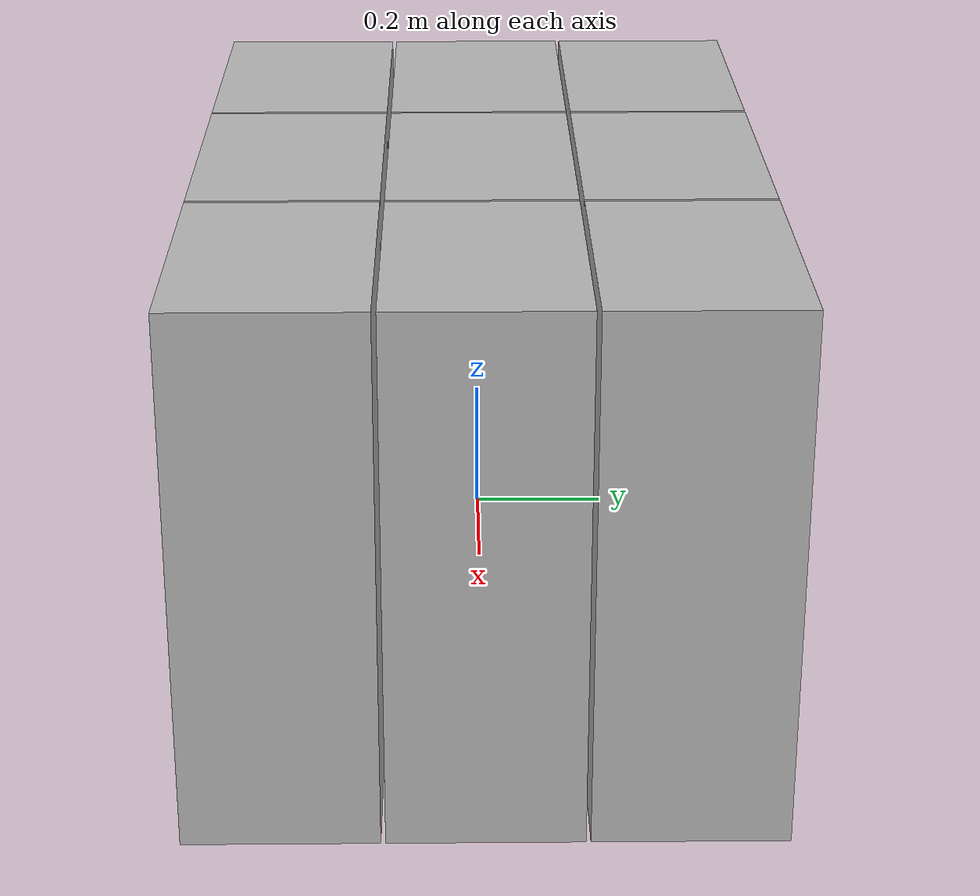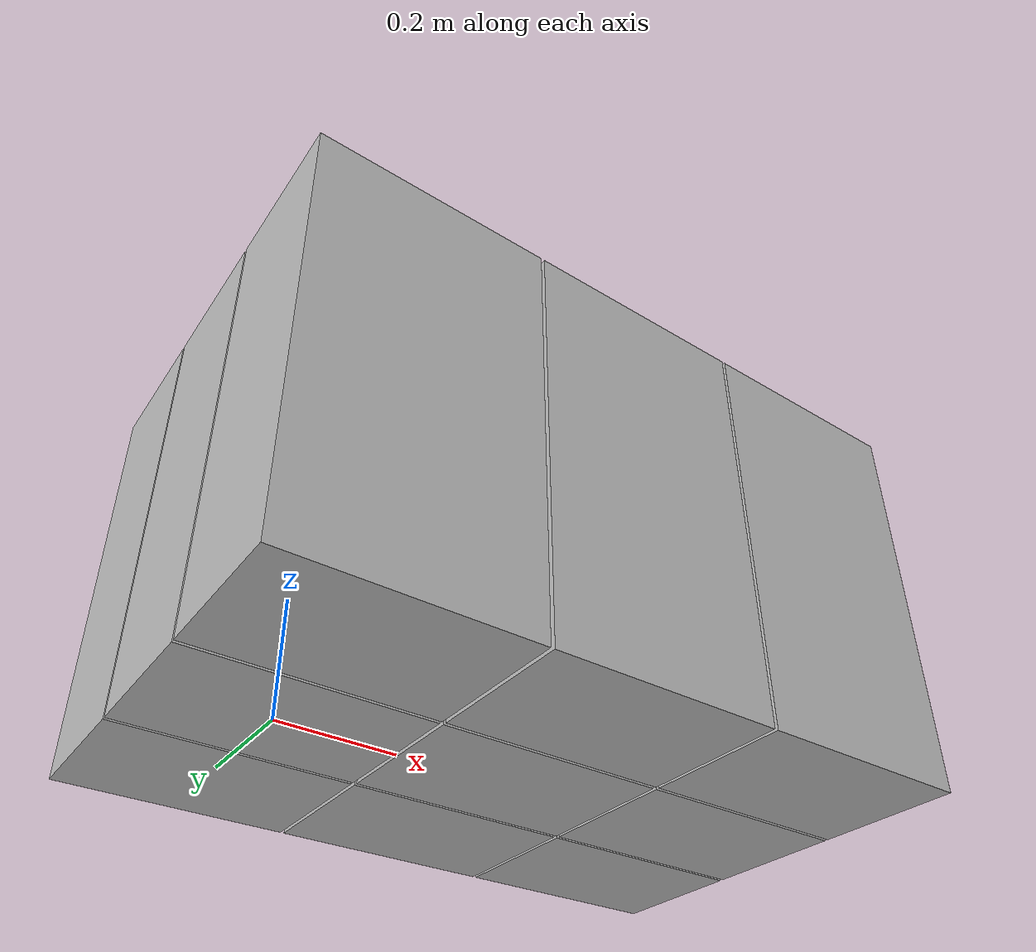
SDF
<?xml version="1.0" ?>
<sdf version="1.5">
  <model name="beer_1">

    <pose>0 0 0  0 0 0</pose>

    <static>true</static>
    <link name="link">
      <inertial>
        <mass>244.94</mass>
        <inertia>
          <ixx>1</ixx>
          <ixy>0</ixy>
          <ixz>0</ixz>
          <iyy>1</iyy>
          <iyz>0</iyz>
          <izz>1</izz>
        </inertia>
      </inertial>

      <collision name="collision">
	    <pose>0 0 0  0 0 0</pose>
        <geometry>
          <mesh>
            <uri>model://beer_1/meshes/beer_1_stack.dae</uri>
          </mesh>
        </geometry>
      </collision>

      <visual name="visual">
        <geometry>
          <mesh>
            <uri>model://beer_1/meshes/beer_1_stack.dae</uri>
          </mesh>
        </geometry>
      </visual>
    </link>
  </model>
</sdf>
